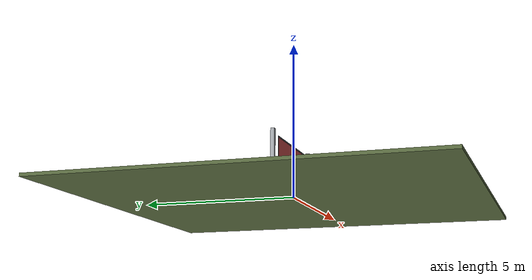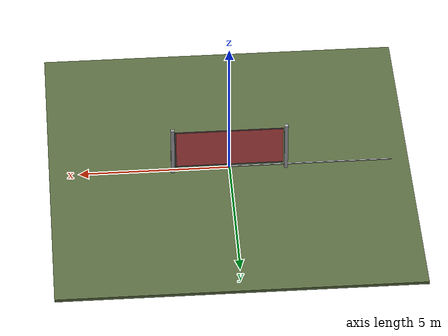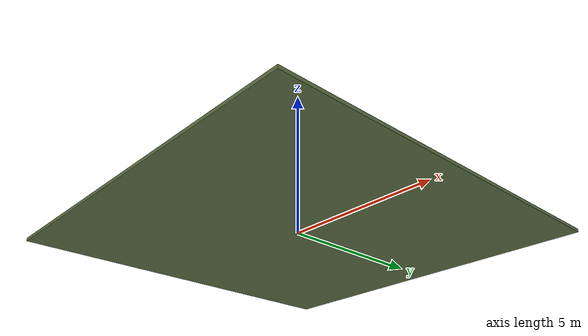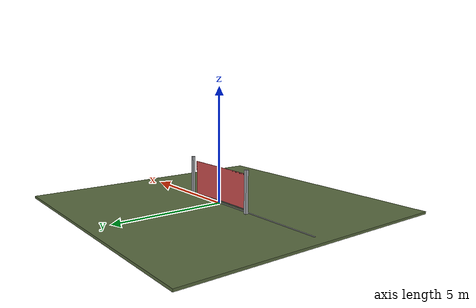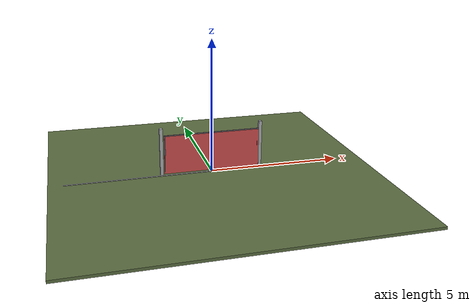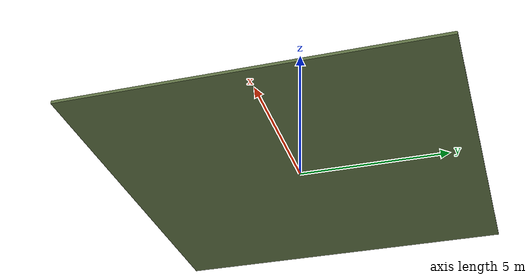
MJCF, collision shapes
<?xml version="1.0" ?>
<mujoco model="db0415_gate_sliding_minimal">
  <compiler angle="radian" meshdir="../../hardware" texturedir="../../textures" autolimits="true" inertiafromgeom="false"/>
  <option timestep="0.002" integrator="implicitfast" cone="elliptic" impratio="10" noslip_iterations="3">
    <flag multiccd="enable"/>
  </option>
  <size memory="16M"/>
  <default>
    <geom condim="4" solref="0.005 1" solimp="0.95 0.99 0.001"/>
    <joint solreflimit="0.005 1" solimplimit="0.95 0.99 0.001"/>
    <tendon solreflimit="0.005 1"/>
    <equality solref="0.002 1"/>
  </default>
  <visual>
    <headlight ambient="0.4 0.4 0.4" diffuse="0.7 0.7 0.7" specular="0.2 0.2 0.2"/>
    <quality shadowsize="4096"/>
    <map znear="0.01" zfar="60"/>
  </visual>
  <asset>
    <mesh name="pull_1e5d69a91a" file="pull_1e5d69a91a.obj"/>
    <material name="mat_floor" rgba="0.35 0.42 0.25 1" specular="0.2" shininess="0.15" reflectance="0"/>
    <material name="mat_wall" rgba="0.78 0.76 0.7 1" specular="0.2" shininess="0.1" reflectance="0"/>
    <material name="mat_frame" rgba="0.65 0.66 0.68 1" specular="0.74" shininess="0.5" reflectance="0.36"/>
    <material name="mat_track" rgba="0.8 0.81 0.83 1" specular="0.8" shininess="0.6" reflectance="0.4"/>
    <material name="mat_leaf" rgba="0.35 0.36 0.38 1" specular="0.68" shininess="0.4" reflectance="0.32"/>
    <material name="mat_mesh_infill" rgba="0.6 0.62 0.64 0.55" specular="0.68" shininess="0.3" reflectance="0.1"/>
    <material name="mat_roller" rgba="0.65 0.66 0.68 1" specular="0.74" shininess="0.5" reflectance="0.36"/>
    <material name="mat_op_stainless" rgba="0.75 0.76 0.77 1" specular="0.8" shininess="0.65" reflectance="0.4"/>
    <material name="mat_ebolt" rgba="0.75 0.76 0.77 1" specular="0.8" shininess="0.65" reflectance="0.4"/>
    <material name="mat_hook" rgba="0.75 0.76 0.77 1" specular="0.8" shininess="0.65" reflectance="0.4"/>
    <texture name="skybox" type="skybox" builtin="gradient" rgb1="0.6 0.7 0.85" rgb2="0.9 0.92 0.95" width="256" height="256"/>
  </asset>
  <worldbody>
    <light name="sun" pos="1.5 -2.5 4" dir="-0.3 0.5 -0.8" directional="true" diffuse="0.8 0.8 0.8" specular="0.3 0.3 0.3" castshadow="true"/>
    <light name="fill" pos="-1.5 2.5 3" dir="0.3 -0.5 -0.7" directional="true" diffuse="0.35 0.35 0.4" castshadow="false"/>
    <camera name="robot_view" pos="0 -4.046875 1.908125" xyaxes="1 0 0 0 0.26963 0.962964" fovy="52"/>
    <camera name="far_view" pos="0 4.046875 1.908125" xyaxes="-1 0 0 0 -0.26963 0.962964" fovy="52"/>
    <camera name="iso" pos="3.075625 -3.399375 2.555625" xyaxes="0.741536 0.670913 0 -0.242917 0.268487 0.932151" fovy="46"/>
    <camera name="detail_handle" pos="1.96 -1.223 1.35" xyaxes="0.975133 0.221621 0 -0.065674 0.288965 0.955084" fovy="38"/>
    <geom name="floor" type="box" size="6 6 0.05" pos="0 0 -0.05" material="mat_floor" group="0" contype="1" conaffinity="1" friction="0.8 0.005 0.0001" density="2400"/>
    <geom name="post_l" type="box" size="0.06 0.06 0.9" pos="-1.885 0.08 0.9" material="mat_frame" group="0" contype="1" conaffinity="1" friction="0.6 0.005 0.0001" density="7850"/>
    <geom name="post_r" type="box" size="0.06 0.06 0.9" pos="1.885 0.08 0.9" material="mat_frame" group="0" contype="1" conaffinity="1" friction="0.6 0.005 0.0001" density="7850"/>
    <geom name="gate_rail" type="box" size="3.65 0.02 0.012" pos="-1.8 -0.06 0.012" material="mat_track" group="0" contype="1" conaffinity="1" friction="0.6 0.005 0.0001" density="2700"/>
    <site name="approach_point" pos="0 -1.5 0" quat="1 0 0 0" size="0.05" rgba="0.2 0.9 0.2 0.5" group="4"/>
    <site name="goal_point" pos="0 1.5 0" quat="1 0 0 0" size="0.05" rgba="0.2 0.9 0.2 0.5" group="4"/>
    <site name="door_plane_center" pos="0 0 0.775" quat="1 0 0 0" size="0.02" rgba="0.2 0.9 0.2 0.5" group="4"/>
    <body name="leaf" pos="0 -0.06 0">
      <inertial pos="0.005152 -0.000161 0.830512" mass="150.319632" quat="0.707158 -0.707056 -0.000254 -0.000433" diaginertia="28.116565729 163.179363832 191.292122671"/>
      <joint name="leaf_slide" type="slide" axis="-1 0 0" limited="true" range="0 3.6" damping="9.5235" frictionloss="354.14559" armature="0.5"/>
      <geom name="leaf_slab_col" type="box" size="1.8 0.003 0.75" pos="0 0 0.83" material="mat_leaf" group="3" contype="1" conaffinity="1" rgba="0.8 0.3 0.3 0.25" friction="0.45 0.005 0.0001" density="1"/>
      <geom name="leaf_rail_b" type="box" size="1.8 0.003 0.0225" pos="0 0 0.1025" material="mat_leaf" group="1" contype="0" conaffinity="0" density="1"/>
      <geom name="leaf_rail_t" type="box" size="1.8 0.003 0.0225" pos="0 0 1.5575" material="mat_leaf" group="1" contype="0" conaffinity="0" density="1"/>
      <geom name="leaf_stile_h" type="box" size="0.0225 0.003 0.75" pos="-1.7775 0 0.83" material="mat_leaf" group="1" contype="0" conaffinity="0" density="1"/>
      <geom name="leaf_stile_l" type="box" size="0.0225 0.003 0.75" pos="1.7775 0 0.83" material="mat_leaf" group="1" contype="0" conaffinity="0" density="1"/>
      <geom name="leaf_mesh" type="box" size="1.755 0.0015 0.705" pos="0 0 0.83" material="mat_mesh_infill" group="1" contype="0" conaffinity="0" density="1"/>
      <geom name="leaf_pull_n" type="mesh" mesh="pull_1e5d69a91a" pos="1.71 -0.003 1" quat="0.707107 0.707107 0 0" material="mat_op_stainless" group="1" contype="0" conaffinity="0" density="3000"/>
      <geom name="leaf_pull_col_n" type="capsule" size="0.0095 0.08" pos="1.71 -0.063 1" material="mat_op_stainless" group="3" contype="1" conaffinity="1" rgba="0.8 0.3 0.3 0.25" friction="0.7 0.01 0.0001" density="3000"/>
      <site name="leaf_pull_grip_n" pos="1.71 -0.063 1" quat="1 0 0 0" size="0.012" rgba="0.2 0.9 0.2 0.5" group="4"/>
      <site name="leaf_edge_mid" pos="1.8 0 0.83" quat="1 0 0 0" size="0.02" rgba="0.2 0.9 0.2 0.5" group="4"/>
    </body>
  </worldbody>
  <sensor>
    <jointpos name="leaf_slide_pos" joint="leaf_slide"/>
    <jointvel name="leaf_slide_vel" joint="leaf_slide"/>
  </sensor>
</mujoco>
